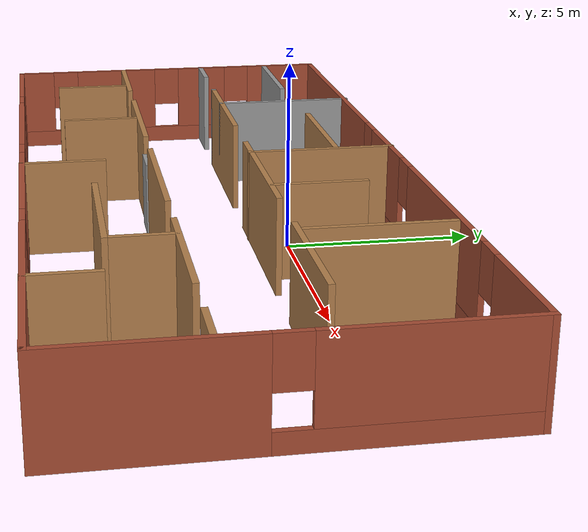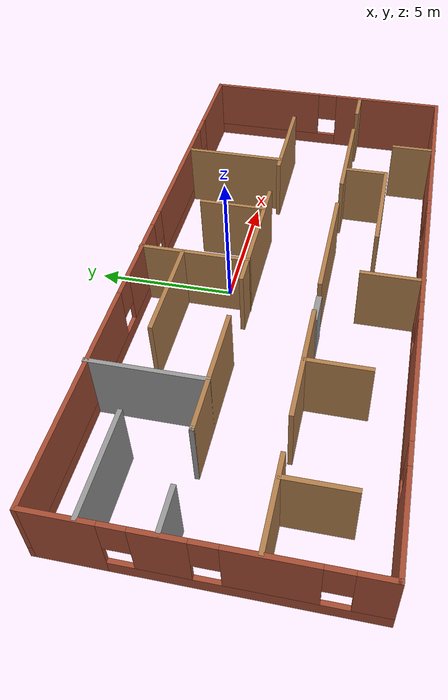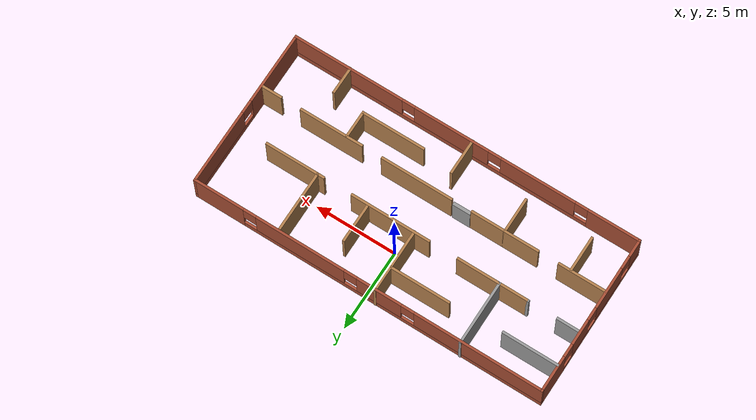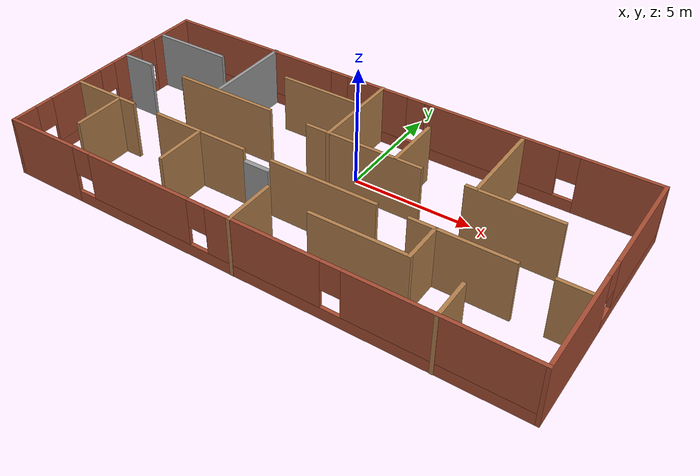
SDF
<?xml version='1.0'?>
<sdf version='1.6'>
  <model name='my_building'>
    <pose frame=''>-0.1264 -1.97204 0 0 -0 0</pose>
    <link name='Door_1'>
      <collision name='Door_1_Collision'>
        <geometry>
          <box>
            <size>1.12125 0.2 2</size>
          </box>
        </geometry>
        <pose frame=''>0 0 1 0 -0 0</pose>
      </collision>
      <visual name='Door_1_Visual'>
        <pose frame=''>0 0 1 0 -0 0</pose>
        <geometry>
          <box>
            <size>1.12125 0.2 2</size>
          </box>
        </geometry>
        <material>
          <script>
            <uri>file://media/materials/scripts/gazebo.material</uri>
            <name>Gazebo/Grey</name>
          </script>
        </material>
      </visual>
      <pose frame=''>-1.91495 -1.55215 0 0 -0 0</pose>
    </link>
    <link name='Wall_51'>
      <pose frame=''>0 -4.9406 0 0 -0 0</pose>
      <visual name='Wall_51_Visual_0'>
        <pose frame=''>-9.36275 0 1.25 0 -0 0</pose>
        <geometry>
          <box>
            <size>3.27449 0.15 2.5</size>
          </box>
        </geometry>
        <material>
          <script>
            <uri>file://media/materials/scripts/gazebo.material</uri>
            <name>Gazebo/Bricks</name>
          </script>
          <ambient>1 0 0 1</ambient>
        </material>
        <meta>
          <layer>0</layer>
        </meta>
      </visual>
      <collision name='Wall_51_Collision_0'>
        <geometry>
          <box>
            <size>3.27449 0.15 2.5</size>
          </box>
        </geometry>
        <pose frame=''>-9.36275 0 1.25 0 -0 0</pose>
      </collision>
      <visual name='Wall_51_Visual_1'>
        <pose frame=''>1.63725 0 0.25 0 -0 0</pose>
        <geometry>
          <box>
            <size>18.7255 0.15 0.5</size>
          </box>
        </geometry>
        <material>
          <script>
            <uri>file://media/materials/scripts/gazebo.material</uri>
            <name>Gazebo/Bricks</name>
          </script>
          <ambient>1 0 0 1</ambient>
        </material>
        <meta>
          <layer>0</layer>
        </meta>
      </visual>
      <collision name='Wall_51_Collision_1'>
        <geometry>
          <box>
            <size>18.7255 0.15 0.5</size>
          </box>
        </geometry>
        <pose frame=''>1.63725 0 0.25 0 -0 0</pose>
      </collision>
      <visual name='Wall_51_Visual_2'>
        <pose frame=''>-4.59006 0 1.5 0 -0 0</pose>
        <geometry>
          <box>
            <size>4.67089 0.15 2</size>
          </box>
        </geometry>
        <material>
          <script>
            <uri>file://media/materials/scripts/gazebo.material</uri>
            <name>Gazebo/Bricks</name>
          </script>
          <ambient>1 0 0 1</ambient>
        </material>
        <meta>
          <layer>0</layer>
        </meta>
      </visual>
      <collision name='Wall_51_Collision_2'>
        <geometry>
          <box>
            <size>4.67089 0.15 2</size>
          </box>
        </geometry>
        <pose frame=''>-4.59006 0 1.5 0 -0 0</pose>
      </collision>
      <visual name='Wall_51_Visual_3'>
        <pose frame=''>0.890888 0 1.5 0 -0 0</pose>
        <geometry>
          <box>
            <size>4.691 0.15 2</size>
          </box>
        </geometry>
        <material>
          <script>
            <uri>file://media/materials/scripts/gazebo.material</uri>
            <name>Gazebo/Bricks</name>
          </script>
          <ambient>1 0 0 1</ambient>
        </material>
        <meta>
          <layer>0</layer>
        </meta>
      </visual>
      <collision name='Wall_51_Collision_3'>
        <geometry>
          <box>
            <size>4.691 0.15 2</size>
          </box>
        </geometry>
        <pose frame=''>0.890888 0 1.5 0 -0 0</pose>
      </collision>
      <visual name='Wall_51_Visual_4'>
        <pose frame=''>7.5182 0 1.5 0 -0 0</pose>
        <geometry>
          <box>
            <size>6.96361 0.15 2</size>
          </box>
        </geometry>
        <material>
          <script>
            <uri>file://media/materials/scripts/gazebo.material</uri>
            <name>Gazebo/Bricks</name>
          </script>
          <ambient>1 0 0 1</ambient>
        </material>
        <meta>
          <layer>0</layer>
        </meta>
      </visual>
      <collision name='Wall_51_Collision_4'>
        <geometry>
          <box>
            <size>6.96361 0.15 2</size>
          </box>
        </geometry>
        <pose frame=''>7.5182 0 1.5 0 -0 0</pose>
      </collision>
      <visual name='Wall_51_Visual_5'>
        <pose frame=''>-7.32551 0 1.9 0 -0 0</pose>
        <geometry>
          <box>
            <size>0.8 0.15 1.2</size>
          </box>
        </geometry>
        <material>
          <script>
            <uri>file://media/materials/scripts/gazebo.material</uri>
            <name>Gazebo/Bricks</name>
          </script>
          <ambient>1 0 0 1</ambient>
        </material>
        <meta>
          <layer>0</layer>
        </meta>
      </visual>
      <collision name='Wall_51_Collision_5'>
        <geometry>
          <box>
            <size>0.8 0.15 1.2</size>
          </box>
        </geometry>
        <pose frame=''>-7.32551 0 1.9 0 -0 0</pose>
      </collision>
      <visual name='Wall_51_Visual_6'>
        <pose frame=''>-1.85461 0 1.9 0 -0 0</pose>
        <geometry>
          <box>
            <size>0.8 0.15 1.2</size>
          </box>
        </geometry>
        <material>
          <script>
            <uri>file://media/materials/scripts/gazebo.material</uri>
            <name>Gazebo/Bricks</name>
          </script>
          <ambient>1 0 0 1</ambient>
        </material>
        <meta>
          <layer>0</layer>
        </meta>
      </visual>
      <collision name='Wall_51_Collision_6'>
        <geometry>
          <box>
            <size>0.8 0.15 1.2</size>
          </box>
        </geometry>
        <pose frame=''>-1.85461 0 1.9 0 -0 0</pose>
      </collision>
      <visual name='Wall_51_Visual_7'>
        <pose frame=''>3.63639 0 1.9 0 -0 0</pose>
        <geometry>
          <box>
            <size>0.8 0.15 1.2</size>
          </box>
        </geometry>
        <material>
          <script>
            <uri>file://media/materials/scripts/gazebo.material</uri>
            <name>Gazebo/Bricks</name>
          </script>
          <ambient>1 0 0 1</ambient>
        </material>
        <meta>
          <layer>0</layer>
        </meta>
      </visual>
      <collision name='Wall_51_Collision_7'>
        <geometry>
          <box>
            <size>0.8 0.15 1.2</size>
          </box>
        </geometry>
        <pose frame=''>3.63639 0 1.9 0 -0 0</pose>
      </collision>
    </link>
    <link name='Wall_52'>
      <pose frame=''>10.925 -0.015605 0 0 -0 1.5708</pose>
      <visual name='Wall_52_Visual_0'>
        <pose frame=''>-2.73413 0 1.25 0 -0 0</pose>
        <geometry>
          <box>
            <size>4.53174 0.15 2.5</size>
          </box>
        </geometry>
        <material>
          <script>
            <uri>file://media/materials/scripts/gazebo.material</uri>
            <name>Gazebo/Bricks</name>
          </script>
          <ambient>1 0 0 1</ambient>
        </material>
        <meta>
          <layer>0</layer>
        </meta>
      </visual>
      <collision name='Wall_52_Collision_0'>
        <geometry>
          <box>
            <size>4.53174 0.15 2.5</size>
          </box>
        </geometry>
        <pose frame=''>-2.73413 0 1.25 0 -0 0</pose>
      </collision>
      <visual name='Wall_52_Visual_1'>
        <pose frame=''>2.26587 0 0.25 0 -0 0</pose>
        <geometry>
          <box>
            <size>5.46826 0.15 0.5</size>
          </box>
        </geometry>
        <material>
          <script>
            <uri>file://media/materials/scripts/gazebo.material</uri>
            <name>Gazebo/Bricks</name>
          </script>
          <ambient>1 0 0 1</ambient>
        </material>
        <meta>
          <layer>0</layer>
        </meta>
      </visual>
      <collision name='Wall_52_Collision_1'>
        <geometry>
          <box>
            <size>5.46826 0.15 0.5</size>
          </box>
        </geometry>
        <pose frame=''>2.26587 0 0.25 0 -0 0</pose>
      </collision>
      <visual name='Wall_52_Visual_2'>
        <pose frame=''>2.66587 0 1.5 0 -0 0</pose>
        <geometry>
          <box>
            <size>4.66826 0.15 2</size>
          </box>
        </geometry>
        <material>
          <script>
            <uri>file://media/materials/scripts/gazebo.material</uri>
            <name>Gazebo/Bricks</name>
          </script>
          <ambient>1 0 0 1</ambient>
        </material>
        <meta>
          <layer>0</layer>
        </meta>
      </visual>
      <collision name='Wall_52_Collision_2'>
        <geometry>
          <box>
            <size>4.66826 0.15 2</size>
          </box>
        </geometry>
        <pose frame=''>2.66587 0 1.5 0 -0 0</pose>
      </collision>
      <visual name='Wall_52_Visual_3'>
        <pose frame=''>-0.068255 0 1.9 0 -0 0</pose>
        <geometry>
          <box>
            <size>0.8 0.15 1.2</size>
          </box>
        </geometry>
        <material>
          <script>
            <uri>file://media/materials/scripts/gazebo.material</uri>
            <name>Gazebo/Bricks</name>
          </script>
          <ambient>1 0 0 1</ambient>
        </material>
        <meta>
          <layer>0</layer>
        </meta>
      </visual>
      <collision name='Wall_52_Collision_3'>
        <geometry>
          <box>
            <size>0.8 0.15 1.2</size>
          </box>
        </geometry>
        <pose frame=''>-0.068255 0 1.9 0 -0 0</pose>
      </collision>
    </link>
    <link name='Wall_53'>
      <pose frame=''>0 4.90939 0 0 -0 3.14159</pose>
      <visual name='Wall_53_Visual_0'>
        <pose frame=''>-9.40543 0 1.25 0 -0 0</pose>
        <geometry>
          <box>
            <size>3.18913 0.15 2.5</size>
          </box>
        </geometry>
        <material>
          <script>
            <uri>file://media/materials/scripts/gazebo.material</uri>
            <name>Gazebo/Bricks</name>
          </script>
          <ambient>1 0 0 1</ambient>
        </material>
        <meta>
          <layer>0</layer>
        </meta>
      </visual>
      <collision name='Wall_53_Collision_0'>
        <geometry>
          <box>
            <size>3.18913 0.15 2.5</size>
          </box>
        </geometry>
        <pose frame=''>-9.40543 0 1.25 0 -0 0</pose>
      </collision>
      <visual name='Wall_53_Visual_1'>
        <pose frame=''>1.59457 0 0.25 0 -0 0</pose>
        <geometry>
          <box>
            <size>18.8109 0.15 0.5</size>
          </box>
        </geometry>
        <material>
          <script>
            <uri>file://media/materials/scripts/gazebo.material</uri>
            <name>Gazebo/Bricks</name>
          </script>
          <ambient>1 0 0 1</ambient>
        </material>
        <meta>
          <layer>0</layer>
        </meta>
      </visual>
      <collision name='Wall_53_Collision_1'>
        <geometry>
          <box>
            <size>18.8109 0.15 0.5</size>
          </box>
        </geometry>
        <pose frame=''>1.59457 0 0.25 0 -0 0</pose>
      </collision>
      <visual name='Wall_53_Visual_2'>
        <pose frame=''>-4.21018 0 1.5 0 -0 0</pose>
        <geometry>
          <box>
            <size>5.60136 0.15 2</size>
          </box>
        </geometry>
        <material>
          <script>
            <uri>file://media/materials/scripts/gazebo.material</uri>
            <name>Gazebo/Bricks</name>
          </script>
          <ambient>1 0 0 1</ambient>
        </material>
        <meta>
          <layer>0</layer>
        </meta>
      </visual>
      <collision name='Wall_53_Collision_2'>
        <geometry>
          <box>
            <size>5.60136 0.15 2</size>
          </box>
        </geometry>
        <pose frame=''>-4.21018 0 1.5 0 -0 0</pose>
      </collision>
      <visual name='Wall_53_Visual_3'>
        <pose frame=''>0.791974 0 1.5 0 -0 0</pose>
        <geometry>
          <box>
            <size>2.80295 0.15 2</size>
          </box>
        </geometry>
        <material>
          <script>
            <uri>file://media/materials/scripts/gazebo.material</uri>
            <name>Gazebo/Bricks</name>
          </script>
          <ambient>1 0 0 1</ambient>
        </material>
        <meta>
          <layer>0</layer>
        </meta>
      </visual>
      <collision name='Wall_53_Collision_3'>
        <geometry>
          <box>
            <size>2.80295 0.15 2</size>
          </box>
        </geometry>
        <pose frame=''>0.791974 0 1.5 0 -0 0</pose>
      </collision>
      <visual name='Wall_53_Visual_4'>
        <pose frame=''>6.99672 0 1.5 0 -0 0</pose>
        <geometry>
          <box>
            <size>8.00655 0.15 2</size>
          </box>
        </geometry>
        <material>
          <script>
            <uri>file://media/materials/scripts/gazebo.material</uri>
            <name>Gazebo/Bricks</name>
          </script>
          <ambient>1 0 0 1</ambient>
        </material>
        <meta>
          <layer>0</layer>
        </meta>
      </visual>
      <collision name='Wall_53_Collision_4'>
        <geometry>
          <box>
            <size>8.00655 0.15 2</size>
          </box>
        </geometry>
        <pose frame=''>6.99672 0 1.5 0 -0 0</pose>
      </collision>
      <visual name='Wall_53_Visual_5'>
        <pose frame=''>-7.41087 0 1.9 0 -0 0</pose>
        <geometry>
          <box>
            <size>0.8 0.15 1.2</size>
          </box>
        </geometry>
        <material>
          <script>
            <uri>file://media/materials/scripts/gazebo.material</uri>
            <name>Gazebo/Bricks</name>
          </script>
          <ambient>1 0 0 1</ambient>
        </material>
        <meta>
          <layer>0</layer>
        </meta>
      </visual>
      <collision name='Wall_53_Collision_5'>
        <geometry>
          <box>
            <size>0.8 0.15 1.2</size>
          </box>
        </geometry>
        <pose frame=''>-7.41087 0 1.9 0 -0 0</pose>
      </collision>
      <visual name='Wall_53_Visual_6'>
        <pose frame=''>-1.0095 0 1.9 0 -0 0</pose>
        <geometry>
          <box>
            <size>0.8 0.15 1.2</size>
          </box>
        </geometry>
        <material>
          <script>
            <uri>file://media/materials/scripts/gazebo.material</uri>
            <name>Gazebo/Bricks</name>
          </script>
          <ambient>1 0 0 1</ambient>
        </material>
        <meta>
          <layer>0</layer>
        </meta>
      </visual>
      <collision name='Wall_53_Collision_6'>
        <geometry>
          <box>
            <size>0.8 0.15 1.2</size>
          </box>
        </geometry>
        <pose frame=''>-1.0095 0 1.9 0 -0 0</pose>
      </collision>
      <visual name='Wall_53_Visual_7'>
        <pose frame=''>2.59345 0 1.9 0 -0 0</pose>
        <geometry>
          <box>
            <size>0.8 0.15 1.2</size>
          </box>
        </geometry>
        <material>
          <script>
            <uri>file://media/materials/scripts/gazebo.material</uri>
            <name>Gazebo/Bricks</name>
          </script>
          <ambient>1 0 0 1</ambient>
        </material>
        <meta>
          <layer>0</layer>
        </meta>
      </visual>
      <collision name='Wall_53_Collision_7'>
        <geometry>
          <box>
            <size>0.8 0.15 1.2</size>
          </box>
        </geometry>
        <pose frame=''>2.59345 0 1.9 0 -0 0</pose>
      </collision>
    </link>
    <link name='Wall_54'>
      <pose frame=''>-10.925 -0.015605 0 0 0 -1.5708</pose>
      <visual name='Wall_54_Visual_0'>
        <pose frame=''>-3.8616 0 1.25 0 -0 0</pose>
        <geometry>
          <box>
            <size>2.2768 0.15 2.5</size>
          </box>
        </geometry>
        <material>
          <script>
            <uri>file://media/materials/scripts/gazebo.material</uri>
            <name>Gazebo/Bricks</name>
          </script>
          <ambient>1 0 0 1</ambient>
        </material>
        <meta>
          <layer>0</layer>
        </meta>
      </visual>
      <collision name='Wall_54_Collision_0'>
        <geometry>
          <box>
            <size>2.2768 0.15 2.5</size>
          </box>
        </geometry>
        <pose frame=''>-3.8616 0 1.25 0 -0 0</pose>
      </collision>
      <visual name='Wall_54_Visual_1'>
        <pose frame=''>1.1384 0 0.25 0 -0 0</pose>
        <geometry>
          <box>
            <size>7.7232 0.15 0.5</size>
          </box>
        </geometry>
        <material>
          <script>
            <uri>file://media/materials/scripts/gazebo.material</uri>
            <name>Gazebo/Bricks</name>
          </script>
          <ambient>1 0 0 1</ambient>
        </material>
        <meta>
          <layer>0</layer>
        </meta>
      </visual>
      <collision name='Wall_54_Collision_1'>
        <geometry>
          <box>
            <size>7.7232 0.15 0.5</size>
          </box>
        </geometry>
        <pose frame=''>1.1384 0 0.25 0 -0 0</pose>
      </collision>
      <visual name='Wall_54_Visual_2'>
        <pose frame=''>-1.12747 0 1.5 0 -0 0</pose>
        <geometry>
          <box>
            <size>1.59146 0.15 2</size>
          </box>
        </geometry>
        <material>
          <script>
            <uri>file://media/materials/scripts/gazebo.material</uri>
            <name>Gazebo/Bricks</name>
          </script>
          <ambient>1 0 0 1</ambient>
        </material>
        <meta>
          <layer>0</layer>
        </meta>
      </visual>
      <collision name='Wall_54_Collision_2'>
        <geometry>
          <box>
            <size>1.59146 0.15 2</size>
          </box>
        </geometry>
        <pose frame=''>-1.12747 0 1.5 0 -0 0</pose>
      </collision>
      <visual name='Wall_54_Visual_3'>
        <pose frame=''>1.76785 0 1.5 0 -0 0</pose>
        <geometry>
          <box>
            <size>2.59919 0.15 2</size>
          </box>
        </geometry>
        <material>
          <script>
            <uri>file://media/materials/scripts/gazebo.material</uri>
            <name>Gazebo/Bricks</name>
          </script>
          <ambient>1 0 0 1</ambient>
        </material>
        <meta>
          <layer>0</layer>
        </meta>
      </visual>
      <collision name='Wall_54_Collision_3'>
        <geometry>
          <box>
            <size>2.59919 0.15 2</size>
          </box>
        </geometry>
        <pose frame=''>1.76785 0 1.5 0 -0 0</pose>
      </collision>
      <visual name='Wall_54_Visual_4'>
        <pose frame=''>4.43372 0 1.5 0 -0 0</pose>
        <geometry>
          <box>
            <size>1.13255 0.15 2</size>
          </box>
        </geometry>
        <material>
          <script>
            <uri>file://media/materials/scripts/gazebo.material</uri>
            <name>Gazebo/Bricks</name>
          </script>
          <ambient>1 0 0 1</ambient>
        </material>
        <meta>
          <layer>0</layer>
        </meta>
      </visual>
      <collision name='Wall_54_Collision_4'>
        <geometry>
          <box>
            <size>1.13255 0.15 2</size>
          </box>
        </geometry>
        <pose frame=''>4.43372 0 1.5 0 -0 0</pose>
      </collision>
      <visual name='Wall_54_Visual_5'>
        <pose frame=''>-2.3232 0 1.9 0 -0 0</pose>
        <geometry>
          <box>
            <size>0.8 0.15 1.2</size>
          </box>
        </geometry>
        <material>
          <script>
            <uri>file://media/materials/scripts/gazebo.material</uri>
            <name>Gazebo/Bricks</name>
          </script>
          <ambient>1 0 0 1</ambient>
        </material>
        <meta>
          <layer>0</layer>
        </meta>
      </visual>
      <collision name='Wall_54_Collision_5'>
        <geometry>
          <box>
            <size>0.8 0.15 1.2</size>
          </box>
        </geometry>
        <pose frame=''>-2.3232 0 1.9 0 -0 0</pose>
      </collision>
      <visual name='Wall_54_Visual_6'>
        <pose frame=''>0.068255 0 1.9 0 -0 0</pose>
        <geometry>
          <box>
            <size>0.8 0.15 1.2</size>
          </box>
        </geometry>
        <material>
          <script>
            <uri>file://media/materials/scripts/gazebo.material</uri>
            <name>Gazebo/Bricks</name>
          </script>
          <ambient>1 0 0 1</ambient>
        </material>
        <meta>
          <layer>0</layer>
        </meta>
      </visual>
      <collision name='Wall_54_Collision_6'>
        <geometry>
          <box>
            <size>0.8 0.15 1.2</size>
          </box>
        </geometry>
        <pose frame=''>0.068255 0 1.9 0 -0 0</pose>
      </collision>
      <visual name='Wall_54_Visual_7'>
        <pose frame=''>3.46745 0 1.9 0 -0 0</pose>
        <geometry>
          <box>
            <size>0.8 0.15 1.2</size>
          </box>
        </geometry>
        <material>
          <script>
            <uri>file://media/materials/scripts/gazebo.material</uri>
            <name>Gazebo/Bricks</name>
          </script>
          <ambient>1 0 0 1</ambient>
        </material>
        <meta>
          <layer>0</layer>
        </meta>
      </visual>
      <collision name='Wall_54_Collision_7'>
        <geometry>
          <box>
            <size>0.8 0.15 1.2</size>
          </box>
        </geometry>
        <pose frame=''>3.46745 0 1.9 0 -0 0</pose>
      </collision>
    </link>
    <link name='Wall_56'>
      <collision name='Wall_56_Collision'>
        <geometry>
          <box>
            <size>1.5 0.15 2.5</size>
          </box>
        </geometry>
        <pose frame=''>0 0 1.25 0 -0 0</pose>
      </collision>
      <visual name='Wall_56_Visual'>
        <pose frame=''>0 0 1.25 0 -0 0</pose>
        <geometry>
          <box>
            <size>1.5 0.15 2.5</size>
          </box>
        </geometry>
        <material>
          <script>
            <uri>file://media/materials/scripts/gazebo.material</uri>
            <name>Gazebo/Grey</name>
          </script>
          <ambient>1 1 1 1</ambient>
        </material>
        <meta>
          <layer>0</layer>
        </meta>
      </visual>
      <pose frame=''>-10.2262 1.10078 0 0 -0 0</pose>
    </link>
    <link name='Wall_59'>
      <collision name='Wall_59_Collision'>
        <geometry>
          <box>
            <size>0.16 0.15 2.5</size>
          </box>
        </geometry>
        <pose frame=''>0 0 1.25 0 -0 0</pose>
      </collision>
      <visual name='Wall_59_Visual'>
        <pose frame=''>0 0 1.25 0 -0 0</pose>
        <geometry>
          <box>
            <size>0.16 0.15 2.5</size>
          </box>
        </geometry>
        <material>
          <script>
            <uri>file://media/materials/scripts/gazebo.material</uri>
            <name>Gazebo/Grey</name>
          </script>
          <ambient>1 1 1 1</ambient>
        </material>
        <meta>
          <layer>0</layer>
        </meta>
      </visual>
      <pose frame=''>-7.69623 1.10078 0 0 -0 0</pose>
    </link>
    <link name='Wall_60'>
      <collision name='Wall_60_Collision'>
        <geometry>
          <box>
            <size>4.5 0.15 2.5</size>
          </box>
        </geometry>
        <pose frame=''>0 0 1.25 0 -0 0</pose>
      </collision>
      <visual name='Wall_60_Visual'>
        <pose frame=''>0 0 1.25 0 -0 0</pose>
        <geometry>
          <box>
            <size>4.5 0.15 2.5</size>
          </box>
        </geometry>
        <material>
          <script>
            <uri>file://media/materials/scripts/gazebo.material</uri>
            <name>Gazebo/Wood</name>
          </script>
          <ambient>0 0 1 1</ambient>
        </material>
        <meta>
          <layer>0</layer>
        </meta>
      </visual>
      <pose frame=''>-5.51623 1.10078 0 0 -0 0</pose>
    </link>
    <link name='Wall_62'>
      <collision name='Wall_62_Collision'>
        <geometry>
          <box>
            <size>5 0.15 2.5</size>
          </box>
        </geometry>
        <pose frame=''>0 0 1.25 0 -0 0</pose>
      </collision>
      <visual name='Wall_62_Visual'>
        <pose frame=''>0 0 1.25 0 -0 0</pose>
        <geometry>
          <box>
            <size>5 0.15 2.5</size>
          </box>
        </geometry>
        <material>
          <script>
            <uri>file://media/materials/scripts/gazebo.material</uri>
            <name>Gazebo/Wood</name>
          </script>
          <ambient>0 0 1 1</ambient>
        </material>
        <meta>
          <layer>0</layer>
        </meta>
      </visual>
      <pose frame=''>0.933769 1.10078 0 0 -0 0</pose>
    </link>
    <link name='Wall_64'>
      <collision name='Wall_64_Collision'>
        <geometry>
          <box>
            <size>3.75 0.15 2.5</size>
          </box>
        </geometry>
        <pose frame=''>0 0 1.25 0 -0 0</pose>
      </collision>
      <visual name='Wall_64_Visual'>
        <pose frame=''>0 0 1.25 0 -0 0</pose>
        <geometry>
          <box>
            <size>3.75 0.15 2.5</size>
          </box>
        </geometry>
        <material>
          <script>
            <uri>file://media/materials/scripts/gazebo.material</uri>
            <name>Gazebo/Wood</name>
          </script>
          <ambient>0 0 1 1</ambient>
        </material>
        <meta>
          <layer>0</layer>
        </meta>
      </visual>
      <pose frame=''>7.00877 1.10078 0 0 -0 0</pose>
    </link>
    <link name='Wall_67'>
      <collision name='Wall_67_Collision'>
        <geometry>
          <box>
            <size>4 0.15 2.5</size>
          </box>
        </geometry>
        <pose frame=''>0 0 1.25 0 -0 0</pose>
      </collision>
      <visual name='Wall_67_Visual'>
        <pose frame=''>0 0 1.25 0 -0 0</pose>
        <geometry>
          <box>
            <size>4 0.15 2.5</size>
          </box>
        </geometry>
        <material>
          <script>
            <uri>file://media/materials/scripts/gazebo.material</uri>
            <name>Gazebo/Grey</name>
          </script>
          <ambient>1 1 1 1</ambient>
        </material>
        <meta>
          <layer>0</layer>
        </meta>
      </visual>
      <pose frame=''>-5.91656 3.02578 0 0 -0 1.5708</pose>
    </link>
    <link name='Wall_69'>
      <collision name='Wall_69_Collision'>
        <geometry>
          <box>
            <size>4 0.15 2.5</size>
          </box>
        </geometry>
        <pose frame=''>0 0 1.25 0 -0 0</pose>
      </collision>
      <visual name='Wall_69_Visual'>
        <pose frame=''>0 0 1.25 0 -0 0</pose>
        <geometry>
          <box>
            <size>4 0.15 2.5</size>
          </box>
        </geometry>
        <material>
          <script>
            <uri>file://media/materials/scripts/gazebo.material</uri>
            <name>Gazebo/Wood</name>
          </script>
          <ambient>0 0 1 1</ambient>
        </material>
        <meta>
          <layer>0</layer>
        </meta>
      </visual>
      <pose frame=''>-0.564604 3.00829 0 0 -0 1.5708</pose>
    </link>
    <link name='Wall_71'>
      <collision name='Wall_71_Collision'>
        <geometry>
          <box>
            <size>3.75 0.15 2.5</size>
          </box>
        </geometry>
        <pose frame=''>0 0 1.25 0 -0 0</pose>
      </collision>
      <visual name='Wall_71_Visual'>
        <pose frame=''>0 0 1.25 0 -0 0</pose>
        <geometry>
          <box>
            <size>3.75 0.15 2.5</size>
          </box>
        </geometry>
        <material>
          <script>
            <uri>file://media/materials/scripts/gazebo.material</uri>
            <name>Gazebo/Wood</name>
          </script>
          <ambient>0 0 1 1</ambient>
        </material>
        <meta>
          <layer>0</layer>
        </meta>
      </visual>
      <pose frame=''>5.57441 2.95325 0 0 -0 1.5708</pose>
    </link>
    <link name='Wall_73'>
      <collision name='Wall_73_Collision'>
        <geometry>
          <box>
            <size>3 0.15 2.5</size>
          </box>
        </geometry>
        <pose frame=''>0 0 1.25 0 -0 0</pose>
      </collision>
      <visual name='Wall_73_Visual'>
        <pose frame=''>0 0 1.25 0 -0 0</pose>
        <geometry>
          <box>
            <size>3 0.15 2.5</size>
          </box>
        </geometry>
        <material>
          <script>
            <uri>file://media/materials/scripts/gazebo.material</uri>
            <name>Gazebo/Wood</name>
          </script>
          <ambient>0 0 1 1</ambient>
        </material>
        <meta>
          <layer>0</layer>
        </meta>
      </visual>
      <pose frame=''>-9.44125 -1.54022 0 0 -0 0</pose>
    </link>
    <link name='Wall_75'>
      <collision name='Wall_75_Collision'>
        <geometry>
          <box>
            <size>4.25 0.15 2.5</size>
          </box>
        </geometry>
        <pose frame=''>0 0 1.25 0 -0 0</pose>
      </collision>
      <visual name='Wall_75_Visual'>
        <pose frame=''>0 0 1.25 0 -0 0</pose>
        <geometry>
          <box>
            <size>4.25 0.15 2.5</size>
          </box>
        </geometry>
        <material>
          <script>
            <uri>file://media/materials/scripts/gazebo.material</uri>
            <name>Gazebo/Wood</name>
          </script>
          <ambient>0 0 1 1</ambient>
        </material>
        <meta>
          <layer>0</layer>
        </meta>
      </visual>
      <pose frame=''>-4.61625 -1.54022 0 0 -0 0</pose>
    </link>
    <link name='Wall_77'>
      <collision name='Wall_77_Collision'>
        <geometry>
          <box>
            <size>4.5 0.15 2.5</size>
          </box>
        </geometry>
        <pose frame=''>0 0 1.25 0 -0 0</pose>
      </collision>
      <visual name='Wall_77_Visual'>
        <pose frame=''>0 0 1.25 0 -0 0</pose>
        <geometry>
          <box>
            <size>4.5 0.15 2.5</size>
          </box>
        </geometry>
        <material>
          <script>
            <uri>file://media/materials/scripts/gazebo.material</uri>
            <name>Gazebo/Wood</name>
          </script>
          <ambient>0 0 1 1</ambient>
        </material>
        <meta>
          <layer>0</layer>
        </meta>
      </visual>
      <pose frame=''>0.95875 -1.54022 0 0 -0 0</pose>
    </link>
    <link name='Wall_79'>
      <collision name='Wall_79_Collision'>
        <geometry>
          <box>
            <size>4 0.15 2.5</size>
          </box>
        </geometry>
        <pose frame=''>0 0 1.25 0 -0 0</pose>
      </collision>
      <visual name='Wall_79_Visual'>
        <pose frame=''>0 0 1.25 0 -0 0</pose>
        <geometry>
          <box>
            <size>4 0.15 2.5</size>
          </box>
        </geometry>
        <material>
          <script>
            <uri>file://media/materials/scripts/gazebo.material</uri>
            <name>Gazebo/Wood</name>
          </script>
          <ambient>0 0 1 1</ambient>
        </material>
        <meta>
          <layer>0</layer>
        </meta>
      </visual>
      <pose frame=''>6.40875 -1.54022 0 0 -0 0</pose>
    </link>
    <link name='Wall_81'>
      <collision name='Wall_81_Collision'>
        <geometry>
          <box>
            <size>1.25 0.15 2.5</size>
          </box>
        </geometry>
        <pose frame=''>0 0 1.25 0 -0 0</pose>
      </collision>
      <visual name='Wall_81_Visual'>
        <pose frame=''>0 0 1.25 0 -0 0</pose>
        <geometry>
          <box>
            <size>1.25 0.15 2.5</size>
          </box>
        </geometry>
        <material>
          <script>
            <uri>file://media/materials/scripts/gazebo.material</uri>
            <name>Gazebo/Wood</name>
          </script>
          <ambient>0 0 1 1</ambient>
        </material>
        <meta>
          <layer>0</layer>
        </meta>
      </visual>
      <pose frame=''>10.2337 -1.54022 0 0 -0 0</pose>
    </link>
    <link name='Wall_83'>
      <collision name='Wall_83_Collision'>
        <geometry>
          <box>
            <size>2.25 0.15 2.5</size>
          </box>
        </geometry>
        <pose frame=''>0 0 1.25 0 -0 0</pose>
      </collision>
      <visual name='Wall_83_Visual'>
        <pose frame=''>0 0 1.25 0 -0 0</pose>
        <geometry>
          <box>
            <size>2.25 0.15 2.5</size>
          </box>
        </geometry>
        <material>
          <script>
            <uri>file://media/materials/scripts/gazebo.material</uri>
            <name>Gazebo/Wood</name>
          </script>
          <ambient>0 0 1 1</ambient>
        </material>
        <meta>
          <layer>0</layer>
        </meta>
      </visual>
      <pose frame=''>-4.60481 -2.59022 0 0 0 -1.5708</pose>
    </link>
    <link name='Wall_85'>
      <collision name='Wall_85_Collision'>
        <geometry>
          <box>
            <size>2.25 0.15 2.5</size>
          </box>
        </geometry>
        <pose frame=''>0 0 1.25 0 -0 0</pose>
      </collision>
      <visual name='Wall_85_Visual'>
        <pose frame=''>0 0 1.25 0 -0 0</pose>
        <geometry>
          <box>
            <size>2.25 0.15 2.5</size>
          </box>
        </geometry>
        <material>
          <script>
            <uri>file://media/materials/scripts/gazebo.material</uri>
            <name>Gazebo/Wood</name>
          </script>
          <ambient>0 0 1 1</ambient>
        </material>
        <meta>
          <layer>0</layer>
        </meta>
      </visual>
      <pose frame=''>-0.424683 -3.90078 0 0 -0 1.5708</pose>
    </link>
    <link name='Wall_87'>
      <collision name='Wall_87_Collision'>
        <geometry>
          <box>
            <size>1.75 0.15 2.5</size>
          </box>
        </geometry>
        <pose frame=''>0 0 1.25 0 -0 0</pose>
      </collision>
      <visual name='Wall_87_Visual'>
        <pose frame=''>0 0 1.25 0 -0 0</pose>
        <geometry>
          <box>
            <size>1.75 0.15 2.5</size>
          </box>
        </geometry>
        <material>
          <script>
            <uri>file://media/materials/scripts/gazebo.material</uri>
            <name>Gazebo/Wood</name>
          </script>
          <ambient>0 0 1 1</ambient>
        </material>
        <meta>
          <layer>0</layer>
        </meta>
      </visual>
      <pose frame=''>5.43449 -2.3752 0 0 0 -1.5708</pose>
    </link>
    <link name='Wall_88'>
      <collision name='Wall_88_Collision'>
        <geometry>
          <box>
            <size>4 0.15 2.5</size>
          </box>
        </geometry>
        <pose frame=''>0 0 1.25 0 -0 0</pose>
      </collision>
      <visual name='Wall_88_Visual'>
        <pose frame=''>0 0 1.25 0 -0 0</pose>
        <geometry>
          <box>
            <size>4 0.15 2.5</size>
          </box>
        </geometry>
        <material>
          <script>
            <uri>file://media/materials/scripts/gazebo.material</uri>
            <name>Gazebo/Wood</name>
          </script>
          <ambient>0 0 1 1</ambient>
        </material>
        <meta>
          <layer>0</layer>
        </meta>
      </visual>
      <pose frame=''>3.50949 -3.1752 0 0 -0 3.14159</pose>
    </link>
    <link name='Wall_90'>
      <collision name='Wall_90_Collision'>
        <geometry>
          <box>
            <size>1.75 0.15 2.5</size>
          </box>
        </geometry>
        <pose frame=''>0 0 1.25 0 -0 0</pose>
      </collision>
      <visual name='Wall_90_Visual'>
        <pose frame=''>0 0 1.25 0 -0 0</pose>
        <geometry>
          <box>
            <size>1.75 0.15 2.5</size>
          </box>
        </geometry>
        <material>
          <script>
            <uri>file://media/materials/scripts/gazebo.material</uri>
            <name>Gazebo/Wood</name>
          </script>
          <ambient>0 0 1 1</ambient>
        </material>
        <meta>
          <layer>0</layer>
        </meta>
      </visual>
      <pose frame=''>7.41087 -4.15078 0 0 -0 1.5708</pose>
    </link>
    <link name='Wall_92'>
      <collision name='Wall_92_Collision'>
        <geometry>
          <box>
            <size>2.25 0.15 2.5</size>
          </box>
        </geometry>
        <pose frame=''>0 0 1.25 0 -0 0</pose>
      </collision>
      <visual name='Wall_92_Visual'>
        <pose frame=''>0 0 1.25 0 -0 0</pose>
        <geometry>
          <box>
            <size>2.25 0.15 2.5</size>
          </box>
        </geometry>
        <material>
          <script>
            <uri>file://media/materials/scripts/gazebo.material</uri>
            <name>Gazebo/Wood</name>
          </script>
          <ambient>0 0 1 1</ambient>
        </material>
        <meta>
          <layer>0</layer>
        </meta>
      </visual>
      <pose frame=''>-8.71497 -2.64269 0 0 0 -1.5708</pose>
    </link>
    <link name='Wall_94'>
      <collision name='Wall_94_Collision'>
        <geometry>
          <box>
            <size>3.5 0.15 2.5</size>
          </box>
        </geometry>
        <pose frame=''>0 0 1.25 0 -0 0</pose>
      </collision>
      <visual name='Wall_94_Visual'>
        <pose frame=''>0 0 1.25 0 -0 0</pose>
        <geometry>
          <box>
            <size>3.5 0.15 2.5</size>
          </box>
        </geometry>
        <material>
          <script>
            <uri>file://media/materials/scripts/gazebo.material</uri>
            <name>Gazebo/Grey</name>
          </script>
          <ambient>1 1 1 1</ambient>
        </material>
        <meta>
          <layer>0</layer>
        </meta>
      </visual>
      <pose frame=''>-9.20874 3.28704 0 0 -0 0</pose>
    </link>
    <link name='Wall_96'>
      <collision name='Wall_96_Collision'>
        <geometry>
          <box>
            <size>3.75 0.15 2.5</size>
          </box>
        </geometry>
        <pose frame=''>0 0 1.25 0 -0 0</pose>
      </collision>
      <visual name='Wall_96_Visual'>
        <pose frame=''>0 0 1.25 0 -0 0</pose>
        <geometry>
          <box>
            <size>3.75 0.15 2.5</size>
          </box>
        </geometry>
        <material>
          <script>
            <uri>file://media/materials/scripts/gazebo.material</uri>
            <name>Gazebo/Wood</name>
          </script>
          <ambient>0 0 1 1</ambient>
        </material>
        <meta>
          <layer>0</layer>
        </meta>
      </visual>
      <pose frame=''>-2.41707 3.42696 0 0 -0 3.14159</pose>
    </link>
    <link name='Wall_98'>
      <collision name='Wall_98_Collision'>
        <geometry>
          <box>
            <size>2.5 0.15 2.5</size>
          </box>
        </geometry>
        <pose frame=''>0 0 1.25 0 -0 0</pose>
      </collision>
      <visual name='Wall_98_Visual'>
        <pose frame=''>0 0 1.25 0 -0 0</pose>
        <geometry>
          <box>
            <size>2.5 0.15 2.5</size>
          </box>
        </geometry>
        <material>
          <script>
            <uri>file://media/materials/scripts/gazebo.material</uri>
            <name>Gazebo/Wood</name>
          </script>
          <ambient>0 0 1 1</ambient>
        </material>
        <meta>
          <layer>0</layer>
        </meta>
      </visual>
      <pose frame=''>2.33875 2.31076 0 0 -0 1.5708</pose>
    </link>
    <static>1</static>
  </model>
</sdf>
